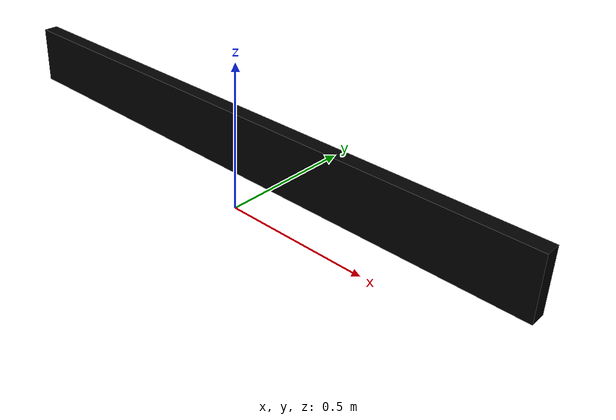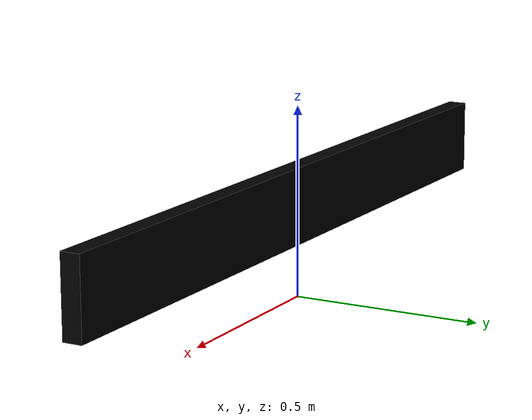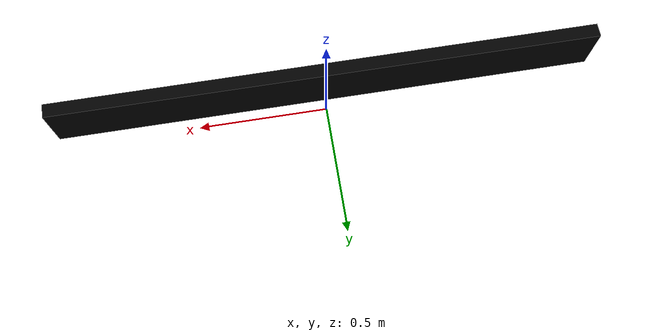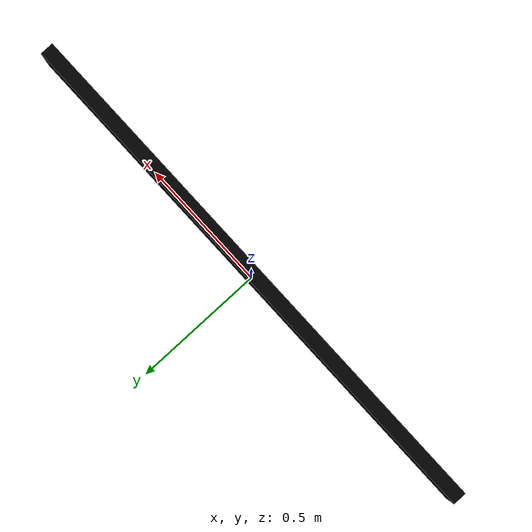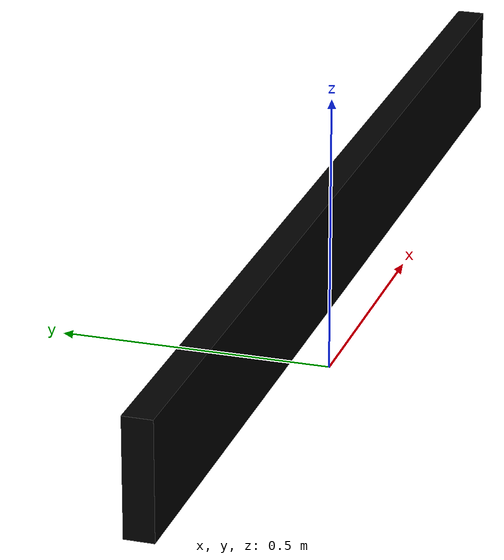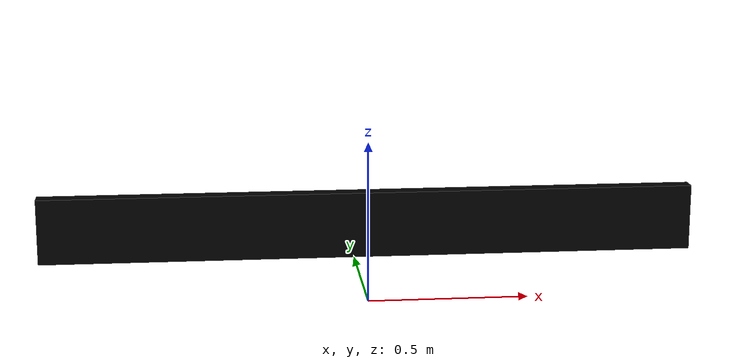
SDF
<?xml version="1.0" ?>
<sdf version='1.6'>
  <model name='wall'>
    <link name='Wall_11'>
      <collision name='Wall_11_Collision'>
        <geometry>
          <box>
            <size>2. 0.05 0.2</size>
          </box>
        </geometry>
        <pose frame=''>0 0 0.25 0 -0 0</pose>
        <max_contacts>10</max_contacts>
        <surface>
          <contact>
            <ode/>
          </contact>
          <bounce/>
          <friction>
            <torsional>
              <ode/>
            </torsional>
            <ode/>
          </friction>
        </surface>
      </collision>
      <visual name='Wall_11_Visual'>
        <pose frame=''>0 0 0.25 0 -0 0</pose>
        <geometry>
          <box>
            <size>2. 0.05 0.2</size>
          </box>
        </geometry>
        <material>
            <diffuse>0 0 0 1</diffuse>
        </material>
        <meta>
          <layer>0</layer>
        </meta>
      </visual>
    </link>
  </model>
</sdf>
